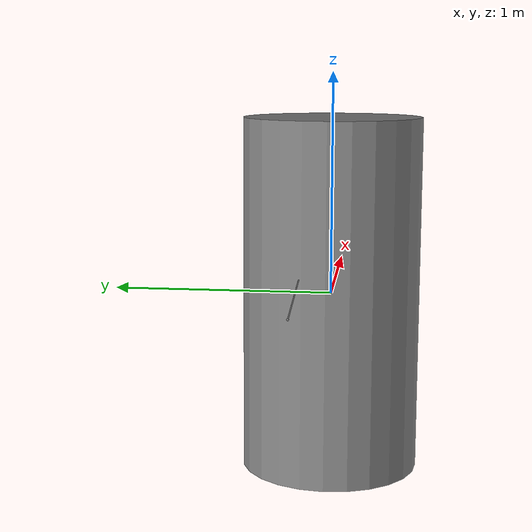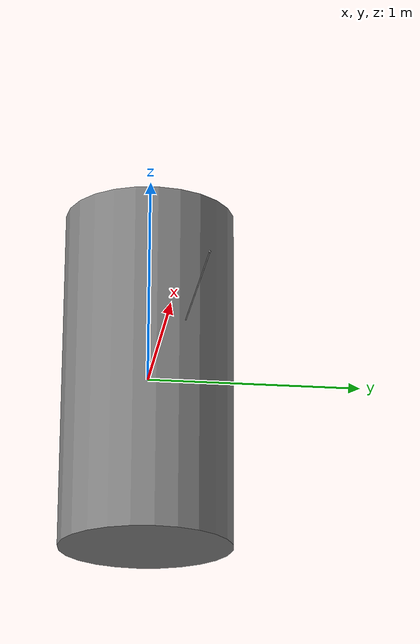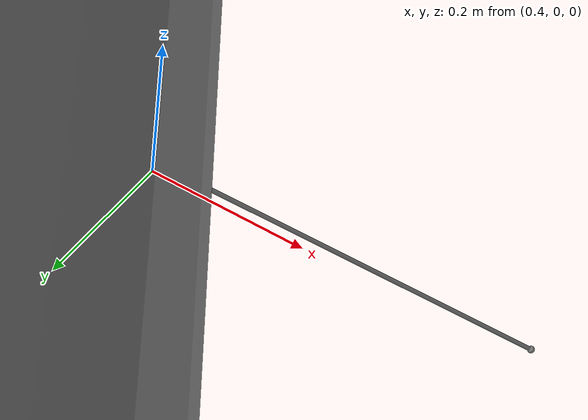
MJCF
<mujoco><compiler angle="radian"/><option timestep=".001" gravity="0 0 -1" integrator="Euler"><flag constraint="disable"/></option>
                <worldbody><geom name="wrap" type="cylinder" size=".4 .8" contype="0" conaffinity="0"/><site name="side" pos="0 0.6 0"/><site name="start" pos="-1 .1 .1"/>
                <body pos="1 .1 .2"><joint name="j" type="slide" axis="0 1 0" damping=".03" armature=".1"/>
                <joint type="hinge" axis="0 0 1" stiffness=".2" armature=".1"/><inertial pos=".1 0 .05" mass="1.4" diaginertia=".2 .3 .4"/><site name="end" pos=".1 .05 0"/></body></worldbody><tendon><spatial stiffness="2 .02 .01" damping=".03 .003 .001" springlength="1.4 1.6"><site site="start"/><geom geom="wrap" sidesite="side"/><site site="end"/></spatial><spatial stiffness="2 .02 .01" damping=".03 .003 .001" springlength="1.4 1.6"><site site="start"/><geom geom="wrap" sidesite="side"/><site site="end"/></spatial><spatial stiffness="2 .02 .01" damping=".03 .003 .001" springlength="1.4 1.6"><site site="start"/><geom geom="wrap" sidesite="side"/><site site="end"/></spatial></tendon><actuator><motor joint="j" gear=".7"/></actuator></mujoco>
